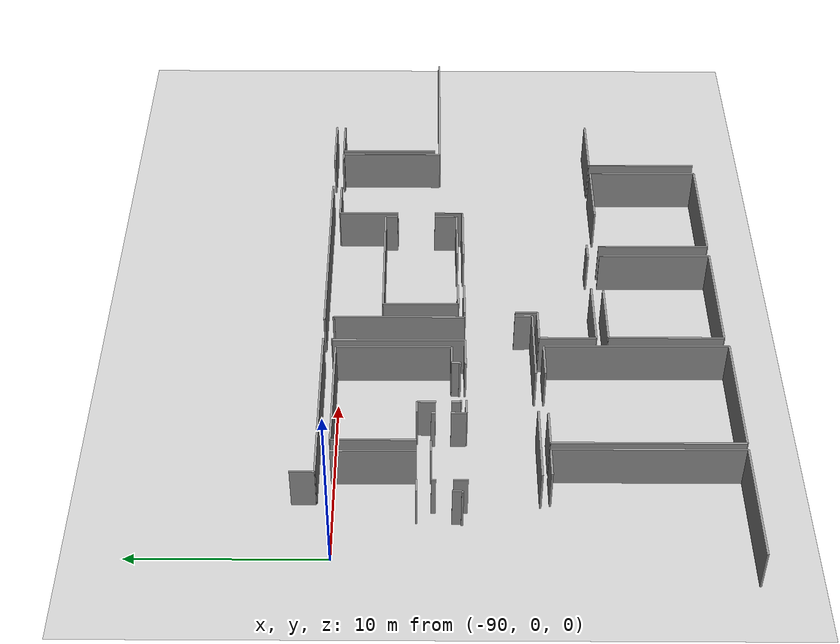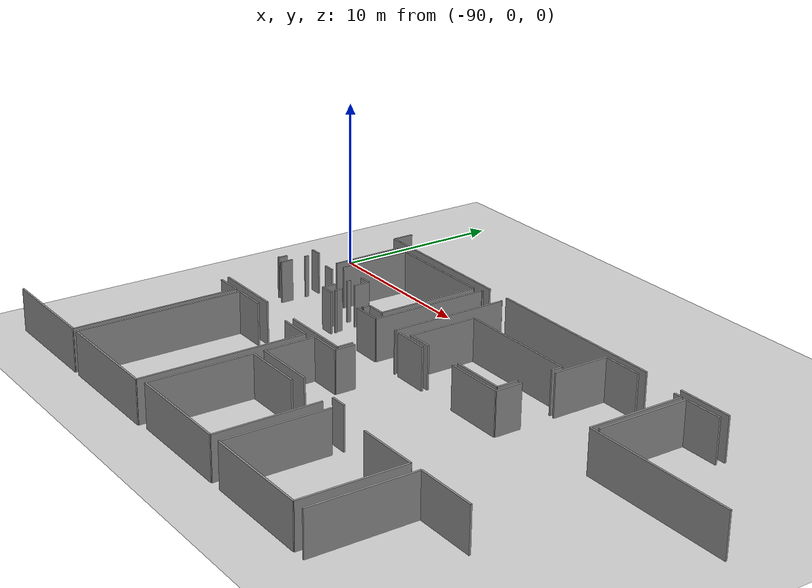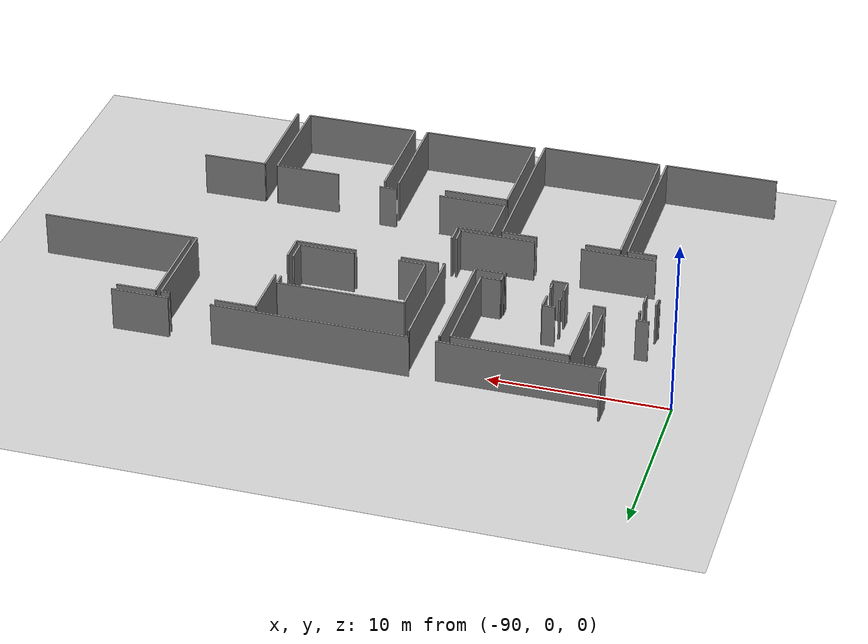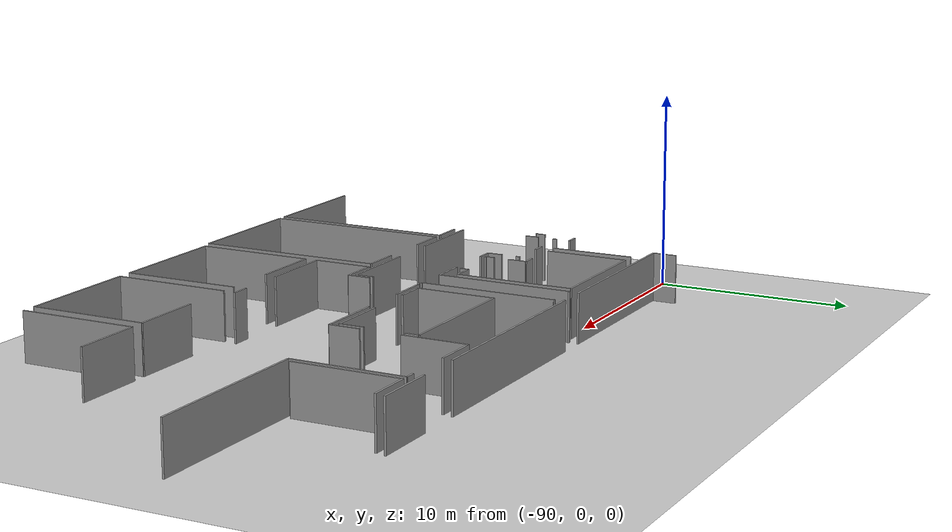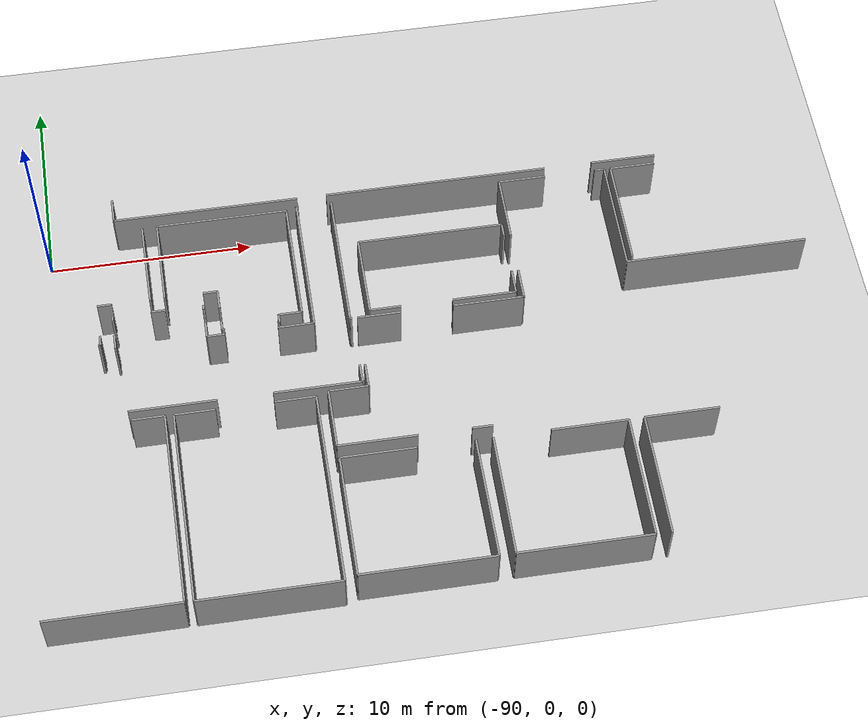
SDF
<sdf version="1.6">
 <world name="default">
  <model name="ground_plane">
   <static>1</static>
   <link name="link">
    <collision name="collision">
     <geometry><plane><normal>0 0 1</normal><size>100 100</size></plane></geometry>
     <surface><friction><ode><mu>100</mu><mu2>50</mu2></ode></friction></surface>
    </collision>
    <visual name="visual">
     <cast_shadows>0</cast_shadows>
     <geometry><plane><normal>0 0 1</normal><size>100 100</size></plane></geometry>
     <material>
      <script><uri>file://media/materials/scripts/gazebo.material</uri><name>Gazebo/Grey</name></script>
     </material>
    </visual>
   </link>
  </model>
  <model name="50037764_PLAN1">
   <static>1</static>
   <link name="Wall_51">
    <collision name="Wall_51_Collision">
     <geometry><box><size>4.26254512177 0.1 2.5</size></box></geometry>
     <pose>2.13127256088 0 1.25 0 0 0</pose>
    </collision>
    <visual name="Wall_51_Visual">
     <pose>2.13127256088 0 1.25 0 0 0</pose>
     <geometry><box><size>4.26254512177 0.1 2.5</size></box></geometry>
     <material>
      <script><uri>file://media/materials/scripts/gazebo.material</uri><name>Gazebo/Grey</name></script>
      <ambient>1 1 1 1</ambient>
     </material>
    </visual>
    <pose>59.4514210178 -31.0718643551 0 0 0 3.14159265359</pose>
   </link>
   <link name="Wall_52">
    <collision name="Wall_52_Collision">
     <geometry><box><size>4.22136356703 0.1 2.5</size></box></geometry>
     <pose>2.11068178352 0 1.25 0 0 0</pose>
    </collision>
    <visual name="Wall_52_Visual">
     <pose>2.11068178352 0 1.25 0 0 0</pose>
     <geometry><box><size>4.22136356703 0.1 2.5</size></box></geometry>
     <material>
      <script><uri>file://media/materials/scripts/gazebo.material</uri><name>Gazebo/Grey</name></script>
      <ambient>1 1 1 1</ambient>
     </material>
    </visual>
    <pose>52.5502059078 -31.0718643551 0 0 0 3.14159265359</pose>
   </link>
   <link name="Wall_60">
    <collision name="Wall_60_Collision">
     <geometry><box><size>0.733387564187 0.1 2.5</size></box></geometry>
     <pose>0.366693782094 0 1.25 0 0 0</pose>
    </collision>
    <visual name="Wall_60_Visual">
     <pose>0.366693782094 0 1.25 0 0 0</pose>
     <geometry><box><size>0.733387564187 0.1 2.5</size></box></geometry>
     <material>
      <script><uri>file://media/materials/scripts/gazebo.material</uri><name>Gazebo/Grey</name></script>
      <ambient>1 1 1 1</ambient>
     </material>
    </visual>
    <pose>48.0306573796 -27.4694951446 0 0 0 1.57079632679</pose>
   </link>
   <link name="Wall_61">
    <collision name="Wall_61_Collision">
     <geometry><box><size>0.232853729219 0.1 2.5</size></box></geometry>
     <pose>0.116426864609 0 1.25 0 0 0</pose>
    </collision>
    <visual name="Wall_61_Visual">
     <pose>0.116426864609 0 1.25 0 0 0</pose>
     <geometry><box><size>0.232853729219 0.1 2.5</size></box></geometry>
     <material>
      <script><uri>file://media/materials/scripts/gazebo.material</uri><name>Gazebo/Grey</name></script>
      <ambient>1 1 1 1</ambient>
     </material>
    </visual>
    <pose>48.0306573796 -25.896969851 0 0 0 1.57079632679</pose>
   </link>
   <link name="Wall_62">
    <collision name="Wall_62_Collision">
     <geometry><box><size>0.6980527734 0.1 2.5</size></box></geometry>
     <pose>0.3490263867 0 1.25 0 0 0</pose>
    </collision>
    <visual name="Wall_62_Visual">
     <pose>0.3490263867 0 1.25 0 0 0</pose>
     <geometry><box><size>0.6980527734 0.1 2.5</size></box></geometry>
     <material>
      <script><uri>file://media/materials/scripts/gazebo.material</uri><name>Gazebo/Grey</name></script>
      <ambient>1 1 1 1</ambient>
     </material>
    </visual>
    <pose>49.8744216788 -25.6641161218 0 0 0 0.0</pose>
   </link>
   <link name="Wall_63">
    <collision name="Wall_63_Collision">
     <geometry><box><size>0.216076058773 0.1 2.5</size></box></geometry>
     <pose>0.108038029386 0 1.25 0 0 0</pose>
    </collision>
    <visual name="Wall_63_Visual">
     <pose>0.108038029386 0 1.25 0 0 0</pose>
     <geometry><box><size>0.216076058773 0.1 2.5</size></box></geometry>
     <material>
      <script><uri>file://media/materials/scripts/gazebo.material</uri><name>Gazebo/Grey</name></script>
      <ambient>1 1 1 1</ambient>
     </material>
    </visual>
    <pose>52.4172555798 -25.6641161218 0 0 0 -1.57079632679</pose>
   </link>
   <link name="Wall_64">
    <collision name="Wall_64_Collision">
     <geometry><box><size>0.78931313234 0.1 2.5</size></box></geometry>
     <pose>0.39465656617 0 1.25 0 0 0</pose>
    </collision>
    <visual name="Wall_64_Visual">
     <pose>0.39465656617 0 1.25 0 0 0</pose>
     <geometry><box><size>0.78931313234 0.1 2.5</size></box></geometry>
     <material>
      <script><uri>file://media/materials/scripts/gazebo.material</uri><name>Gazebo/Grey</name></script>
      <ambient>1 1 1 1</ambient>
     </material>
    </visual>
    <pose>52.4172555798 -26.6697595201 0 0 0 -1.57079632679</pose>
   </link>
   <link name="Wall_65">
    <collision name="Wall_65_Collision">
     <geometry><box><size>0.864304235091 0.1 2.5</size></box></geometry>
     <pose>0.432152117545 0 1.25 0 0 0</pose>
    </collision>
    <visual name="Wall_65_Visual">
     <pose>0.432152117545 0 1.25 0 0 0</pose>
     <geometry><box><size>0.864304235091 0.1 2.5</size></box></geometry>
     <material>
      <script><uri>file://media/materials/scripts/gazebo.material</uri><name>Gazebo/Grey</name></script>
      <ambient>1 1 1 1</ambient>
     </material>
    </visual>
    <pose>52.4172555798 -27.4590726524 0 0 0 0.0</pose>
   </link>
   <link name="Wall_66">
    <collision name="Wall_66_Collision">
     <geometry><box><size>1.74411510499 0.1 2.5</size></box></geometry>
     <pose>0.872057552494 0 1.25 0 0 0</pose>
    </collision>
    <visual name="Wall_66_Visual">
     <pose>0.872057552494 0 1.25 0 0 0</pose>
     <geometry><box><size>1.74411510499 0.1 2.5</size></box></geometry>
     <material>
      <script><uri>file://media/materials/scripts/gazebo.material</uri><name>Gazebo/Grey</name></script>
      <ambient>1 1 1 1</ambient>
     </material>
    </visual>
    <pose>55.8470181504 -27.4590726524 0 0 0 0.0</pose>
   </link>
   <link name="Wall_67">
    <collision name="Wall_67_Collision">
     <geometry><box><size>6.98027352687 0.1 2.5</size></box></geometry>
     <pose>3.49013676343 0 1.25 0 0 0</pose>
    </collision>
    <visual name="Wall_67_Visual">
     <pose>3.49013676343 0 1.25 0 0 0</pose>
     <geometry><box><size>6.98027352687 0.1 2.5</size></box></geometry>
     <material>
      <script><uri>file://media/materials/scripts/gazebo.material</uri><name>Gazebo/Grey</name></script>
      <ambient>1 1 1 1</ambient>
     </material>
    </visual>
    <pose>57.5911332554 -27.4590726524 0 0 0 1.57079632679</pose>
   </link>
   <link name="Wall_68">
    <collision name="Wall_68_Collision">
     <geometry><box><size>0.094819258732 0.1 2.5</size></box></geometry>
     <pose>0.047409629366 0 1.25 0 0 0</pose>
    </collision>
    <visual name="Wall_68_Visual">
     <pose>0.047409629366 0 1.25 0 0 0</pose>
     <geometry><box><size>0.094819258732 0.1 2.5</size></box></geometry>
     <material>
      <script><uri>file://media/materials/scripts/gazebo.material</uri><name>Gazebo/Grey</name></script>
      <ambient>1 1 1 1</ambient>
     </material>
    </visual>
    <pose>57.5911332554 -20.4787991255 0 0 0 0.0</pose>
   </link>
   <link name="Wall_69">
    <collision name="Wall_69_Collision">
     <geometry><box><size>0.0660938532717 0.1 2.5</size></box></geometry>
     <pose>0.0330469266358 0 1.25 0 0 0</pose>
    </collision>
    <visual name="Wall_69_Visual">
     <pose>0.0330469266358 0 1.25 0 0 0</pose>
     <geometry><box><size>0.0660938532717 0.1 2.5</size></box></geometry>
     <material>
      <script><uri>file://media/materials/scripts/gazebo.material</uri><name>Gazebo/Grey</name></script>
      <ambient>1 1 1 1</ambient>
     </material>
    </visual>
    <pose>59.2645787788 -20.4787991255 0 0 0 0.0</pose>
   </link>
   <link name="Wall_70">
    <collision name="Wall_70_Collision">
     <geometry><box><size>6.98129035538 0.1 2.5</size></box></geometry>
     <pose>3.49064517769 0 1.25 0 0 0</pose>
    </collision>
    <visual name="Wall_70_Visual">
     <pose>3.49064517769 0 1.25 0 0 0</pose>
     <geometry><box><size>6.98129035538 0.1 2.5</size></box></geometry>
     <material>
      <script><uri>file://media/materials/scripts/gazebo.material</uri><name>Gazebo/Grey</name></script>
      <ambient>1 1 1 1</ambient>
     </material>
    </visual>
    <pose>59.3306726321 -20.4787991255 0 0 0 -1.57079632679</pose>
   </link>
   <link name="Wall_71">
    <collision name="Wall_71_Collision">
     <geometry><box><size>0.0999034012914 0.1 2.5</size></box></geometry>
     <pose>0.0499517006457 0 1.25 0 0 0</pose>
    </collision>
    <visual name="Wall_71_Visual">
     <pose>0.0499517006457 0 1.25 0 0 0</pose>
     <geometry><box><size>0.0999034012914 0.1 2.5</size></box></geometry>
     <material>
      <script><uri>file://media/materials/scripts/gazebo.material</uri><name>Gazebo/Grey</name></script>
      <ambient>1 1 1 1</ambient>
     </material>
    </visual>
    <pose>59.3306726321 -27.4600894809 0 0 0 0.0</pose>
   </link>
   <link name="Wall_72">
    <collision name="Wall_72_Collision">
     <geometry><box><size>0.939780751468 0.1 2.5</size></box></geometry>
     <pose>0.469890375734 0 1.25 0 0 0</pose>
    </collision>
    <visual name="Wall_72_Visual">
     <pose>0.469890375734 0 1.25 0 0 0</pose>
     <geometry><box><size>0.939780751468 0.1 2.5</size></box></geometry>
     <material>
      <script><uri>file://media/materials/scripts/gazebo.material</uri><name>Gazebo/Grey</name></script>
      <ambient>1 1 1 1</ambient>
     </material>
    </visual>
    <pose>59.4305760334 -30.1323148101 0 0 0 -1.54861381873</pose>
   </link>
   <link name="Wall_73">
    <collision name="Wall_73_Collision">
     <geometry><box><size>0.714576236718 0.1 2.5</size></box></geometry>
     <pose>0.357288118359 0 1.25 0 0 0</pose>
    </collision>
    <visual name="Wall_73_Visual">
     <pose>0.357288118359 0 1.25 0 0 0</pose>
     <geometry><box><size>0.714576236718 0.1 2.5</size></box></geometry>
     <material>
      <script><uri>file://media/materials/scripts/gazebo.material</uri><name>Gazebo/Grey</name></script>
      <ambient>1 1 1 1</ambient>
     </material>
    </visual>
    <pose>48.0545528497 -24.9505567136 0 0 0 3.14159265359</pose>
   </link>
   <link name="Wall_75">
    <collision name="Wall_75_Collision">
     <geometry><box><size>0.506889013168 0.1 2.5</size></box></geometry>
     <pose>0.253444506584 0 1.25 0 0 0</pose>
    </collision>
    <visual name="Wall_75_Visual">
     <pose>0.253444506584 0 1.25 0 0 0</pose>
     <geometry><box><size>0.506889013168 0.1 2.5</size></box></geometry>
     <material>
      <script><uri>file://media/materials/scripts/gazebo.material</uri><name>Gazebo/Grey</name></script>
      <ambient>1 1 1 1</ambient>
     </material>
    </visual>
    <pose>47.3399766129 -26.6781483553 0 0 0 -1.57079632679</pose>
   </link>
   <link name="Wall_76">
    <collision name="Wall_76_Collision">
     <geometry><box><size>0.108038029386 0.1 2.5</size></box></geometry>
     <pose>0.0540190146932 0 1.25 0 0 0</pose>
    </collision>
    <visual name="Wall_76_Visual">
     <pose>0.0540190146932 0 1.25 0 0 0</pose>
     <geometry><box><size>0.108038029386 0.1 2.5</size></box></geometry>
     <material>
      <script><uri>file://media/materials/scripts/gazebo.material</uri><name>Gazebo/Grey</name></script>
      <ambient>1 1 1 1</ambient>
     </material>
    </visual>
    <pose>47.3399766129 -27.1850373684 0 0 0 3.14159265359</pose>
   </link>
   <link name="Wall_82">
    <collision name="Wall_82_Collision">
     <geometry><box><size>4.28075915968 0.1 2.5</size></box></geometry>
     <pose>2.14037957984 0 1.25 0 0 0</pose>
    </collision>
    <visual name="Wall_82_Visual">
     <pose>2.14037957984 0 1.25 0 0 0</pose>
     <geometry><box><size>4.28075915968 0.1 2.5</size></box></geometry>
     <material>
      <script><uri>file://media/materials/scripts/gazebo.material</uri><name>Gazebo/Grey</name></script>
      <ambient>1 1 1 1</ambient>
     </material>
    </visual>
    <pose>49.8744216788 -20.6699628858 0 0 0 -1.56200743261</pose>
   </link>
   <link name="Wall_83">
    <collision name="Wall_83_Collision">
     <geometry><box><size>1.12537495551 0.1 2.5</size></box></geometry>
     <pose>0.562687477757 0 1.25 0 0 0</pose>
    </collision>
    <visual name="Wall_83_Visual">
     <pose>0.562687477757 0 1.25 0 0 0</pose>
     <geometry><box><size>1.12537495551 0.1 2.5</size></box></geometry>
     <material>
      <script><uri>file://media/materials/scripts/gazebo.material</uri><name>Gazebo/Grey</name></script>
      <ambient>1 1 1 1</ambient>
     </material>
    </visual>
    <pose>57.0822105852 -26.7399206874 0 0 0 3.14159265359</pose>
   </link>
   <link name="Wall_84">
    <collision name="Wall_84_Collision">
     <geometry><box><size>0.431897910417 0.1 2.5</size></box></geometry>
     <pose>0.215948955209 0 1.25 0 0 0</pose>
    </collision>
    <visual name="Wall_84_Visual">
     <pose>0.215948955209 0 1.25 0 0 0</pose>
     <geometry><box><size>0.431897910417 0.1 2.5</size></box></geometry>
     <material>
      <script><uri>file://media/materials/scripts/gazebo.material</uri><name>Gazebo/Grey</name></script>
      <ambient>1 1 1 1</ambient>
     </material>
    </visual>
    <pose>55.9568356297 -26.7399206874 0 0 0 -1.57079632679</pose>
   </link>
   <link name="Wall_85">
    <collision name="Wall_85_Collision">
     <geometry><box><size>0.0983781585236 0.1 2.5</size></box></geometry>
     <pose>0.0491890792618 0 1.25 0 0 0</pose>
    </collision>
    <visual name="Wall_85_Visual">
     <pose>0.0491890792618 0 1.25 0 0 0</pose>
     <geometry><box><size>0.0983781585236 0.1 2.5</size></box></geometry>
     <material>
      <script><uri>file://media/materials/scripts/gazebo.material</uri><name>Gazebo/Grey</name></script>
      <ambient>1 1 1 1</ambient>
     </material>
    </visual>
    <pose>55.9568356297 -27.1718185978 0 0 0 3.14159265359</pose>
   </link>
   <link name="Wall_86">
    <collision name="Wall_86_Collision">
     <geometry><box><size>0.125578321216 0.1 2.5</size></box></geometry>
     <pose>0.0627891606081 0 1.25 0 0 0</pose>
    </collision>
    <visual name="Wall_86_Visual">
     <pose>0.0627891606081 0 1.25 0 0 0</pose>
     <geometry><box><size>0.125578321216 0.1 2.5</size></box></geometry>
     <material>
      <script><uri>file://media/materials/scripts/gazebo.material</uri><name>Gazebo/Grey</name></script>
      <ambient>1 1 1 1</ambient>
     </material>
    </visual>
    <pose>53.3067263206 -27.1718185978 0 0 0 3.14159265359</pose>
   </link>
   <link name="Wall_87">
    <collision name="Wall_87_Collision">
     <geometry><box><size>0.45909807311 0.1 2.5</size></box></geometry>
     <pose>0.229549036555 0 1.25 0 0 0</pose>
    </collision>
    <visual name="Wall_87_Visual">
     <pose>0.229549036555 0 1.25 0 0 0</pose>
     <geometry><box><size>0.45909807311 0.1 2.5</size></box></geometry>
     <material>
      <script><uri>file://media/materials/scripts/gazebo.material</uri><name>Gazebo/Grey</name></script>
      <ambient>1 1 1 1</ambient>
     </material>
    </visual>
    <pose>53.1811479994 -27.1718185978 0 0 0 1.57079632679</pose>
   </link>
   <link name="Wall_88">
    <collision name="Wall_88_Collision">
     <geometry><box><size>0.956073008287 0.1 2.5</size></box></geometry>
     <pose>0.478036504144 0 1.25 0 0 0</pose>
    </collision>
    <visual name="Wall_88_Visual">
     <pose>0.478036504144 0 1.25 0 0 0</pose>
     <geometry><box><size>0.956073008287 0.1 2.5</size></box></geometry>
     <material>
      <script><uri>file://media/materials/scripts/gazebo.material</uri><name>Gazebo/Grey</name></script>
      <ambient>1 1 1 1</ambient>
     </material>
    </visual>
    <pose>53.1811479994 -25.9094260003 0 0 0 1.57079632679</pose>
   </link>
   <link name="Wall_89">
    <collision name="Wall_89_Collision">
     <geometry><box><size>0.710254715542 0.1 2.5</size></box></geometry>
     <pose>0.355127357771 0 1.25 0 0 0</pose>
    </collision>
    <visual name="Wall_89_Visual">
     <pose>0.355127357771 0 1.25 0 0 0</pose>
     <geometry><box><size>0.710254715542 0.1 2.5</size></box></geometry>
     <material>
      <script><uri>file://media/materials/scripts/gazebo.material</uri><name>Gazebo/Grey</name></script>
      <ambient>1 1 1 1</ambient>
     </material>
    </visual>
    <pose>53.1811479994 -24.953352992 0 0 0 3.14159265359</pose>
   </link>
   <link name="Wall_90">
    <collision name="Wall_90_Collision">
     <geometry><box><size>4.29177894148 0.1 2.5</size></box></geometry>
     <pose>2.14588947074 0 1.25 0 0 0</pose>
    </collision>
    <visual name="Wall_90_Visual">
     <pose>2.14588947074 0 1.25 0 0 0</pose>
     <geometry><box><size>4.29177894148 0.1 2.5</size></box></geometry>
     <material>
      <script><uri>file://media/materials/scripts/gazebo.material</uri><name>Gazebo/Grey</name></script>
      <ambient>1 1 1 1</ambient>
     </material>
    </visual>
    <pose>50.6131475927 -24.953352992 0 0 0 1.57079632679</pose>
   </link>
   <link name="Wall_91">
    <collision name="Wall_91_Collision">
     <geometry><box><size>6.44948904367 0.1 2.5</size></box></geometry>
     <pose>3.22474452184 0 1.25 0 0 0</pose>
    </collision>
    <visual name="Wall_91_Visual">
     <pose>3.22474452184 0 1.25 0 0 0</pose>
     <geometry><box><size>6.44948904367 0.1 2.5</size></box></geometry>
     <material>
      <script><uri>file://media/materials/scripts/gazebo.material</uri><name>Gazebo/Grey</name></script>
      <ambient>1 1 1 1</ambient>
     </material>
    </visual>
    <pose>50.6131475927 -20.6615740505 0 0 0 0.0</pose>
   </link>
   <link name="Wall_92">
    <collision name="Wall_92_Collision">
     <geometry><box><size>6.07837815351 0.1 2.5</size></box></geometry>
     <pose>3.03918907675 0 1.25 0 0 0</pose>
    </collision>
    <visual name="Wall_92_Visual">
     <pose>3.03918907675 0 1.25 0 0 0</pose>
     <geometry><box><size>6.07837815351 0.1 2.5</size></box></geometry>
     <material>
      <script><uri>file://media/materials/scripts/gazebo.material</uri><name>Gazebo/Grey</name></script>
      <ambient>1 1 1 1</ambient>
     </material>
    </visual>
    <pose>57.0626366363 -20.6615740505 0 0 0 -1.56757606274</pose>
   </link>
   <link name="Wall_93">
    <collision name="Wall_93_Collision">
     <geometry><box><size>6.41237480299 0.1 2.5</size></box></geometry>
     <pose>3.20618740149 0 1.25 0 0 0</pose>
    </collision>
    <visual name="Wall_93_Visual">
     <pose>3.20618740149 0 1.25 0 0 0</pose>
     <geometry><box><size>6.41237480299 0.1 2.5</size></box></geometry>
     <material>
      <script><uri>file://media/materials/scripts/gazebo.material</uri><name>Gazebo/Grey</name></script>
      <ambient>1 1 1 1</ambient>
     </material>
    </visual>
    <pose>50.0157608419 -41.2787889572 0 0 0 3.14159265359</pose>
   </link>
   <link name="Wall_96">
    <collision name="Wall_96_Collision">
     <geometry><box><size>1.60557222025 0.1 2.5</size></box></geometry>
     <pose>0.802786110123 0 1.25 0 0 0</pose>
    </collision>
    <visual name="Wall_96_Visual">
     <pose>0.802786110123 0 1.25 0 0 0</pose>
     <geometry><box><size>1.60557222025 0.1 2.5</size></box></geometry>
     <material>
      <script><uri>file://media/materials/scripts/gazebo.material</uri><name>Gazebo/Grey</name></script>
      <ambient>1 1 1 1</ambient>
     </material>
    </visual>
    <pose>48.4198484926 -31.5561289339 0 0 0 0.0</pose>
   </link>
   <link name="Wall_97">
    <collision name="Wall_97_Collision">
     <geometry><box><size>9.72266482213 0.1 2.5</size></box></geometry>
     <pose>4.86133241106 0 1.25 0 0 0</pose>
    </collision>
    <visual name="Wall_97_Visual">
     <pose>4.86133241106 0 1.25 0 0 0</pose>
     <geometry><box><size>9.72266482213 0.1 2.5</size></box></geometry>
     <material>
      <script><uri>file://media/materials/scripts/gazebo.material</uri><name>Gazebo/Grey</name></script>
      <ambient>1 1 1 1</ambient>
     </material>
    </visual>
    <pose>50.0254207128 -31.5561289339 0 0 0 -1.57178986845</pose>
   </link>
   <link name="Wall_98">
    <collision name="Wall_98_Collision">
     <geometry><box><size>6.78097513854 0.1 2.5</size></box></geometry>
     <pose>3.39048756927 0 1.25 0 0 0</pose>
    </collision>
    <visual name="Wall_98_Visual">
     <pose>3.39048756927 0 1.25 0 0 0</pose>
     <geometry><box><size>6.78097513854 0.1 2.5</size></box></geometry>
     <material>
      <script><uri>file://media/materials/scripts/gazebo.material</uri><name>Gazebo/Grey</name></script>
      <ambient>1 1 1 1</ambient>
     </material>
    </visual>
    <pose>57.2204992628 -41.2818394428 0 0 0 3.14159265359</pose>
   </link>
   <link name="Wall_99">
    <collision name="Wall_99_Collision">
     <geometry><box><size>9.71528801668 0.1 2.5</size></box></geometry>
     <pose>4.85764400834 0 1.25 0 0 0</pose>
    </collision>
    <visual name="Wall_99_Visual">
     <pose>4.85764400834 0 1.25 0 0 0</pose>
     <geometry><box><size>9.71528801668 0.1 2.5</size></box></geometry>
     <material>
      <script><uri>file://media/materials/scripts/gazebo.material</uri><name>Gazebo/Grey</name></script>
      <ambient>1 1 1 1</ambient>
     </material>
    </visual>
    <pose>50.4395241243 -41.2818394428 0 0 0 1.57079632679</pose>
   </link>
   <link name="Wall_100">
    <collision name="Wall_100_Collision">
     <geometry><box><size>1.97823986985 0.1 2.5</size></box></geometry>
     <pose>0.989119934923 0 1.25 0 0 0</pose>
    </collision>
    <visual name="Wall_100_Visual">
     <pose>0.989119934923 0 1.25 0 0 0</pose>
     <geometry><box><size>1.97823986985 0.1 2.5</size></box></geometry>
     <material>
      <script><uri>file://media/materials/scripts/gazebo.material</uri><name>Gazebo/Grey</name></script>
      <ambient>1 1 1 1</ambient>
     </material>
    </visual>
    <pose>50.4395241243 -31.5665514261 0 0 0 0.0</pose>
   </link>
   <link name="Wall_101">
    <collision name="Wall_101_Collision">
     <geometry><box><size>1.98917077635 0.1 2.5</size></box></geometry>
     <pose>0.994585388174 0 1.25 0 0 0</pose>
    </collision>
    <visual name="Wall_101_Visual">
     <pose>0.994585388174 0 1.25 0 0 0</pose>
     <geometry><box><size>1.98917077635 0.1 2.5</size></box></geometry>
     <material>
      <script><uri>file://media/materials/scripts/gazebo.material</uri><name>Gazebo/Grey</name></script>
      <ambient>1 1 1 1</ambient>
     </material>
    </visual>
    <pose>55.1873506533 -31.5665514261 0 0 0 0.0</pose>
   </link>
   <link name="Wall_102">
    <collision name="Wall_102_Collision">
     <geometry><box><size>9.71538755258 0.1 2.5</size></box></geometry>
     <pose>4.85769377629 0 1.25 0 0 0</pose>
    </collision>
    <visual name="Wall_102_Visual">
     <pose>4.85769377629 0 1.25 0 0 0</pose>
     <geometry><box><size>9.71538755258 0.1 2.5</size></box></geometry>
     <material>
      <script><uri>file://media/materials/scripts/gazebo.material</uri><name>Gazebo/Grey</name></script>
      <ambient>1 1 1 1</ambient>
     </material>
    </visual>
    <pose>57.1765214297 -31.5665514261 0 0 0 -1.56626969488</pose>
   </link>
   <link name="Wall_110">
    <collision name="Wall_110_Collision">
     <geometry><box><size>1.24231023438 0.1 2.5</size></box></geometry>
     <pose>0.621155117189 0 1.25 0 0 0</pose>
    </collision>
    <visual name="Wall_110_Visual">
     <pose>0.621155117189 0 1.25 0 0 0</pose>
     <geometry><box><size>1.24231023438 0.1 2.5</size></box></geometry>
     <material>
      <script><uri>file://media/materials/scripts/gazebo.material</uri><name>Gazebo/Grey</name></script>
      <ambient>1 1 1 1</ambient>
     </material>
    </visual>
    <pose>48.5344959073 -18.7540037623 0 0 0 -1.57079632679</pose>
   </link>
   <link name="Wall_111">
    <collision name="Wall_111_Collision">
     <geometry><box><size>9.1519650211 0.1 2.5</size></box></geometry>
     <pose>4.57598251055 0 1.25 0 0 0</pose>
    </collision>
    <visual name="Wall_111_Visual">
     <pose>4.57598251055 0 1.25 0 0 0</pose>
     <geometry><box><size>9.1519650211 0.1 2.5</size></box></geometry>
     <material>
      <script><uri>file://media/materials/scripts/gazebo.material</uri><name>Gazebo/Grey</name></script>
      <ambient>1 1 1 1</ambient>
     </material>
    </visual>
    <pose>48.5344959073 -19.9963139966 0 0 0 0.0</pose>
   </link>
   <link name="Wall_112">
    <collision name="Wall_112_Collision">
     <geometry><box><size>11.0836849865 0.1 2.5</size></box></geometry>
     <pose>5.54184249326 0 1.25 0 0 0</pose>
    </collision>
    <visual name="Wall_112_Visual">
     <pose>5.54184249326 0 1.25 0 0 0</pose>
     <geometry><box><size>11.0836849865 0.1 2.5</size></box></geometry>
     <material>
      <script><uri>file://media/materials/scripts/gazebo.material</uri><name>Gazebo/Grey</name></script>
      <ambient>1 1 1 1</ambient>
     </material>
    </visual>
    <pose>59.1524734354 -19.9963139966 0 0 0 0.0</pose>
   </link>
   <link name="Wall_113">
    <collision name="Wall_113_Collision">
     <geometry><box><size>3.23554832478 0.1 2.5</size></box></geometry>
     <pose>1.61777416239 0 1.25 0 0 0</pose>
    </collision>
    <visual name="Wall_113_Visual">
     <pose>1.61777416239 0 1.25 0 0 0</pose>
     <geometry><box><size>3.23554832478 0.1 2.5</size></box></geometry>
     <material>
      <script><uri>file://media/materials/scripts/gazebo.material</uri><name>Gazebo/Grey</name></script>
      <ambient>1 1 1 1</ambient>
     </material>
    </visual>
    <pose>72.6379073669 -19.9963139966 0 0 0 0.0</pose>
   </link>
   <link name="Wall_117">
    <collision name="Wall_117_Collision">
     <geometry><box><size>0.990390970563 0.1 2.5</size></box></geometry>
     <pose>0.495195485281 0 1.25 0 0 0</pose>
    </collision>
    <visual name="Wall_117_Visual">
     <pose>0.495195485281 0 1.25 0 0 0</pose>
     <geometry><box><size>0.990390970563 0.1 2.5</size></box></geometry>
     <material>
      <script><uri>file://media/materials/scripts/gazebo.material</uri><name>Gazebo/Grey</name></script>
      <ambient>1 1 1 1</ambient>
     </material>
    </visual>
    <pose>65.1344755707 -34.3661345264 0 0 0 3.14159265359</pose>
   </link>
   <link name="Wall_118">
    <collision name="Wall_118_Collision">
     <geometry><box><size>3.82276679038 0.1 2.5</size></box></geometry>
     <pose>1.91138339519 0 1.25 0 0 0</pose>
    </collision>
    <visual name="Wall_118_Visual">
     <pose>1.91138339519 0 1.25 0 0 0</pose>
     <geometry><box><size>3.82276679038 0.1 2.5</size></box></geometry>
     <material>
      <script><uri>file://media/materials/scripts/gazebo.material</uri><name>Gazebo/Grey</name></script>
      <ambient>1 1 1 1</ambient>
     </material>
    </visual>
    <pose>61.5984544207 -34.3661345264 0 0 0 3.14159265359</pose>
   </link>
   <link name="Wall_119">
    <collision name="Wall_119_Collision">
     <geometry><box><size>3.00955818801 0.1 2.5</size></box></geometry>
     <pose>1.50477909401 0 1.25 0 0 0</pose>
    </collision>
    <visual name="Wall_119_Visual">
     <pose>1.50477909401 0 1.25 0 0 0</pose>
     <geometry><box><size>3.00955818801 0.1 2.5</size></box></geometry>
     <material>
      <script><uri>file://media/materials/scripts/gazebo.material</uri><name>Gazebo/Grey</name></script>
      <ambient>1 1 1 1</ambient>
     </material>
    </visual>
    <pose>57.7756876303 -34.3661345264 0 0 0 1.57079632679</pose>
   </link>
   <link name="Wall_120">
    <collision name="Wall_120_Collision">
     <geometry><box><size>1.91290863796 0.1 2.5</size></box></geometry>
     <pose>0.956454318979 0 1.25 0 0 0</pose>
    </collision>
    <visual name="Wall_120_Visual">
     <pose>0.956454318979 0 1.25 0 0 0</pose>
     <geometry><box><size>1.91290863796 0.1 2.5</size></box></geometry>
     <material>
      <script><uri>file://media/materials/scripts/gazebo.material</uri><name>Gazebo/Grey</name></script>
      <ambient>1 1 1 1</ambient>
     </material>
    </visual>
    <pose>57.7756876303 -31.3565763384 0 0 0 0.0</pose>
   </link>
   <link name="Wall_121">
    <collision name="Wall_121_Collision">
     <geometry><box><size>1.19655295134 0.1 2.5</size></box></geometry>
     <pose>0.598276475672 0 1.25 0 0 0</pose>
    </collision>
    <visual name="Wall_121_Visual">
     <pose>0.598276475672 0 1.25 0 0 0</pose>
     <geometry><box><size>1.19655295134 0.1 2.5</size></box></geometry>
     <material>
      <script><uri>file://media/materials/scripts/gazebo.material</uri><name>Gazebo/Grey</name></script>
      <ambient>1 1 1 1</ambient>
     </material>
    </visual>
    <pose>59.6885962682 -31.3565763384 0 0 0 1.57079632679</pose>
   </link>
   <link name="Wall_122">
    <collision name="Wall_122_Collision">
     <geometry><box><size>2.12568000407 0.1 2.5</size></box></geometry>
     <pose>1.06284000203 0 1.25 0 0 0</pose>
    </collision>
    <visual name="Wall_122_Visual">
     <pose>1.06284000203 0 1.25 0 0 0</pose>
     <geometry><box><size>2.12568000407 0.1 2.5</size></box></geometry>
     <material>
      <script><uri>file://media/materials/scripts/gazebo.material</uri><name>Gazebo/Grey</name></script>
      <ambient>1 1 1 1</ambient>
     </material>
    </visual>
    <pose>59.6885962682 -27.4672072805 0 0 0 0.0</pose>
   </link>
   <link name="Wall_123">
    <collision name="Wall_123_Collision">
     <geometry><box><size>3.47374040368 0.1 2.5</size></box></geometry>
     <pose>1.73687020184 0 1.25 0 0 0</pose>
    </collision>
    <visual name="Wall_123_Visual">
     <pose>1.73687020184 0 1.25 0 0 0</pose>
     <geometry><box><size>3.47374040368 0.1 2.5</size></box></geometry>
     <material>
      <script><uri>file://media/materials/scripts/gazebo.material</uri><name>Gazebo/Grey</name></script>
      <ambient>1 1 1 1</ambient>
     </material>
    </visual>
    <pose>64.3639737658 -27.4672072805 0 0 0 0.0</pose>
   </link>
   <link name="Wall_124">
    <collision name="Wall_124_Collision">
     <geometry><box><size>1.5715084651 0.1 2.5</size></box></geometry>
     <pose>0.785754232549 0 1.25 0 0 0</pose>
    </collision>
    <visual name="Wall_124_Visual">
     <pose>0.785754232549 0 1.25 0 0 0</pose>
     <geometry><box><size>1.5715084651 0.1 2.5</size></box></geometry>
     <material>
      <script><uri>file://media/materials/scripts/gazebo.material</uri><name>Gazebo/Grey</name></script>
      <ambient>1 1 1 1</ambient>
     </material>
    </visual>
    <pose>67.8377141695 -27.4672072805 0 0 0 1.57079632679</pose>
   </link>
   <link name="Wall_125">
    <collision name="Wall_125_Collision">
     <geometry><box><size>3.31816564136 0.1 2.5</size></box></geometry>
     <pose>1.65908282068 0 1.25 0 0 0</pose>
    </collision>
    <visual name="Wall_125_Visual">
     <pose>1.65908282068 0 1.25 0 0 0</pose>
     <geometry><box><size>3.31816564136 0.1 2.5</size></box></geometry>
     <material>
      <script><uri>file://media/materials/scripts/gazebo.material</uri><name>Gazebo/Grey</name></script>
      <ambient>1 1 1 1</ambient>
     </material>
    </visual>
    <pose>67.8377141695 -23.8073872591 0 0 0 1.57079632679</pose>
   </link>
   <link name="Wall_126">
    <collision name="Wall_126_Collision">
     <geometry><box><size>2.32014845696 0.1 2.5</size></box></geometry>
     <pose>1.16007422848 0 1.25 0 0 0</pose>
    </collision>
    <visual name="Wall_126_Visual">
     <pose>1.16007422848 0 1.25 0 0 0</pose>
     <geometry><box><size>2.32014845696 0.1 2.5</size></box></geometry>
     <material>
      <script><uri>file://media/materials/scripts/gazebo.material</uri><name>Gazebo/Grey</name></script>
      <ambient>1 1 1 1</ambient>
     </material>
    </visual>
    <pose>67.8377141695 -20.4892216178 0 0 0 0.0</pose>
   </link>
   <link name="Wall_127">
    <collision name="Wall_127_Collision">
     <geometry><box><size>0.506889013168 0.1 2.5</size></box></geometry>
     <pose>0.253444506584 0 1.25 0 0 0</pose>
    </collision>
    <visual name="Wall_127_Visual">
     <pose>0.253444506584 0 1.25 0 0 0</pose>
     <geometry><box><size>0.506889013168 0.1 2.5</size></box></geometry>
     <material>
      <script><uri>file://media/materials/scripts/gazebo.material</uri><name>Gazebo/Grey</name></script>
      <ambient>1 1 1 1</ambient>
     </material>
    </visual>
    <pose>72.7022217703 -20.4892216178 0 0 0 0.0</pose>
   </link>
   <link name="Wall_128">
    <collision name="Wall_128_Collision">
     <geometry><box><size>5.70313691596 0.1 2.5</size></box></geometry>
     <pose>2.85156845798 0 1.25 0 0 0</pose>
    </collision>
    <visual name="Wall_128_Visual">
     <pose>2.85156845798 0 1.25 0 0 0</pose>
     <geometry><box><size>5.70313691596 0.1 2.5</size></box></geometry>
     <material>
      <script><uri>file://media/materials/scripts/gazebo.material</uri><name>Gazebo/Grey</name></script>
      <ambient>1 1 1 1</ambient>
     </material>
    </visual>
    <pose>73.2091107835 -20.4892216178 0 0 0 -1.57079632679</pose>
   </link>
   <link name="Wall_129">
    <collision name="Wall_129_Collision">
     <geometry><box><size>8.95953022523 0.1 2.5</size></box></geometry>
     <pose>4.47976511261 0 1.25 0 0 0</pose>
    </collision>
    <visual name="Wall_129_Visual">
     <pose>4.47976511261 0 1.25 0 0 0</pose>
     <geometry><box><size>8.95953022523 0.1 2.5</size></box></geometry>
     <material>
      <script><uri>file://media/materials/scripts/gazebo.material</uri><name>Gazebo/Grey</name></script>
      <ambient>1 1 1 1</ambient>
     </material>
    </visual>
    <pose>73.2091107835 -26.1923585337 0 0 0 0.0</pose>
   </link>
   <link name="Wall_132">
    <collision name="Wall_132_Collision">
     <geometry><box><size>3.12039249581 0.1 2.5</size></box></geometry>
     <pose>1.5601962479 0 1.25 0 0 0</pose>
    </collision>
    <visual name="Wall_132_Visual">
     <pose>1.5601962479 0 1.25 0 0 0</pose>
     <geometry><box><size>3.12039249581 0.1 2.5</size></box></geometry>
     <material>
      <script><uri>file://media/materials/scripts/gazebo.material</uri><name>Gazebo/Grey</name></script>
      <ambient>1 1 1 1</ambient>
     </material>
    </visual>
    <pose>67.5179216025 -27.1357211856 0 0 0 3.14159265359</pose>
   </link>
   <link name="Wall_133">
    <collision name="Wall_133_Collision">
     <geometry><box><size>1.52346331791 0.1 2.5</size></box></geometry>
     <pose>0.761731658956 0 1.25 0 0 0</pose>
    </collision>
    <visual name="Wall_133_Visual">
     <pose>0.761731658956 0 1.25 0 0 0</pose>
     <geometry><box><size>1.52346331791 0.1 2.5</size></box></geometry>
     <material>
      <script><uri>file://media/materials/scripts/gazebo.material</uri><name>Gazebo/Grey</name></script>
      <ambient>1 1 1 1</ambient>
     </material>
    </visual>
    <pose>61.8628298337 -27.1357211856 0 0 0 3.14159265359</pose>
   </link>
   <link name="Wall_134">
    <collision name="Wall_134_Collision">
     <geometry><box><size>4.04418119884 0.1 2.5</size></box></geometry>
     <pose>2.02209059942 0 1.25 0 0 0</pose>
    </collision>
    <visual name="Wall_134_Visual">
     <pose>2.02209059942 0 1.25 0 0 0</pose>
     <geometry><box><size>4.04418119884 0.1 2.5</size></box></geometry>
     <material>
      <script><uri>file://media/materials/scripts/gazebo.material</uri><name>Gazebo/Grey</name></script>
      <ambient>1 1 1 1</ambient>
     </material>
    </visual>
    <pose>60.3393665158 -27.1357211856 0 0 0 1.57079632679</pose>
   </link>
   <link name="Wall_135">
    <collision name="Wall_135_Collision">
     <geometry><box><size>7.17448777264 0.1 2.5</size></box></geometry>
     <pose>3.58724388632 0 1.25 0 0 0</pose>
    </collision>
    <visual name="Wall_135_Visual">
     <pose>3.58724388632 0 1.25 0 0 0</pose>
     <geometry><box><size>7.17448777264 0.1 2.5</size></box></geometry>
     <material>
      <script><uri>file://media/materials/scripts/gazebo.material</uri><name>Gazebo/Grey</name></script>
      <ambient>1 1 1 1</ambient>
     </material>
    </visual>
    <pose>60.3393665158 -23.0915399868 0 0 0 0.0</pose>
   </link>
   <link name="Wall_136">
    <collision name="Wall_136_Collision">
     <geometry><box><size>0.679749860186 0.1 2.5</size></box></geometry>
     <pose>0.339874930093 0 1.25 0 0 0</pose>
    </collision>
    <visual name="Wall_136_Visual">
     <pose>0.339874930093 0 1.25 0 0 0</pose>
     <geometry><box><size>0.679749860186 0.1 2.5</size></box></geometry>
     <material>
      <script><uri>file://media/materials/scripts/gazebo.material</uri><name>Gazebo/Grey</name></script>
      <ambient>1 1 1 1</ambient>
     </material>
    </visual>
    <pose>67.5138542885 -23.0915399868 0 0 0 -1.57079632679</pose>
   </link>
   <link name="Wall_137">
    <collision name="Wall_137_Collision">
     <geometry><box><size>1.2524851236 0.1 2.5</size></box></geometry>
     <pose>0.626242561801 0 1.25 0 0 0</pose>
    </collision>
    <visual name="Wall_137_Visual">
     <pose>0.626242561801 0 1.25 0 0 0</pose>
     <geometry><box><size>1.2524851236 0.1 2.5</size></box></geometry>
     <material>
      <script><uri>file://media/materials/scripts/gazebo.material</uri><name>Gazebo/Grey</name></script>
      <ambient>1 1 1 1</ambient>
     </material>
    </visual>
    <pose>67.5138542885 -25.8832426661 0 0 0 -1.56754892599</pose>
   </link>
   <link name="Wall_138">
    <collision name="Wall_138_Collision">
     <geometry><box><size>6.44847221516 0.1 2.5</size></box></geometry>
     <pose>3.22423610758 0 1.25 0 0 0</pose>
    </collision>
    <visual name="Wall_138_Visual">
     <pose>3.22423610758 0 1.25 0 0 0</pose>
     <geometry><box><size>6.44847221516 0.1 2.5</size></box></geometry>
     <material>
      <script><uri>file://media/materials/scripts/gazebo.material</uri><name>Gazebo/Grey</name></script>
      <ambient>1 1 1 1</ambient>
     </material>
    </visual>
    <pose>64.2622909146 -41.0886420255 0 0 0 3.14159265359</pose>
   </link>
   <link name="Wall_139">
    <collision name="Wall_139_Collision">
     <geometry><box><size>6.08215974376 0.1 2.5</size></box></geometry>
     <pose>3.04107987188 0 1.25 0 0 0</pose>
    </collision>
    <visual name="Wall_139_Visual">
     <pose>3.04107987188 0 1.25 0 0 0</pose>
     <geometry><box><size>6.08215974376 0.1 2.5</size></box></geometry>
     <material>
      <script><uri>file://media/materials/scripts/gazebo.material</uri><name>Gazebo/Grey</name></script>
      <ambient>1 1 1 1</ambient>
     </material>
    </visual>
    <pose>57.8138186995 -41.0886420255 0 0 0 1.57079632679</pose>
   </link>
   <link name="Wall_140">
    <collision name="Wall_140_Collision">
     <geometry><box><size>3.63770400122 0.1 2.5</size></box></geometry>
     <pose>1.81885200061 0 1.25 0 0 0</pose>
    </collision>
    <visual name="Wall_140_Visual">
     <pose>1.81885200061 0 1.25 0 0 0</pose>
     <geometry><box><size>3.63770400122 0.1 2.5</size></box></geometry>
     <material>
      <script><uri>file://media/materials/scripts/gazebo.material</uri><name>Gazebo/Grey</name></script>
      <ambient>1 1 1 1</ambient>
     </material>
    </visual>
    <pose>57.8138186995 -35.0064822818 0 0 0 0.0</pose>
   </link>
   <link name="Wall_141">
    <collision name="Wall_141_Collision">
     <geometry><box><size>6.08238299166 0.1 2.5</size></box></geometry>
     <pose>3.04119149583 0 1.25 0 0 0</pose>
    </collision>
    <visual name="Wall_141_Visual">
     <pose>3.04119149583 0 1.25 0 0 0</pose>
     <geometry><box><size>6.08238299166 0.1 2.5</size></box></geometry>
     <material>
      <script><uri>file://media/materials/scripts/gazebo.material</uri><name>Gazebo/Grey</name></script>
      <ambient>1 1 1 1</ambient>
     </material>
    </visual>
    <pose>64.2101784534 -35.0064822818 0 0 0 -1.56222845152</pose>
   </link>
   <link name="Wall_142">
    <collision name="Wall_142_Collision">
     <geometry><box><size>6.43296558035 0.1 2.5</size></box></geometry>
     <pose>3.21648279018 0 1.25 0 0 0</pose>
    </collision>
    <visual name="Wall_142_Visual">
     <pose>3.21648279018 0 1.25 0 0 0</pose>
     <geometry><box><size>6.43296558035 0.1 2.5</size></box></geometry>
     <material>
      <script><uri>file://media/materials/scripts/gazebo.material</uri><name>Gazebo/Grey</name></script>
      <ambient>1 1 1 1</ambient>
     </material>
    </visual>
    <pose>71.4624536072 -41.0772027048 0 0 0 3.14159265359</pose>
   </link>
   <link name="Wall_143">
    <collision name="Wall_143_Collision">
     <geometry><box><size>6.070720423 0.1 2.5</size></box></geometry>
     <pose>3.0353602115 0 1.25 0 0 0</pose>
    </collision>
    <visual name="Wall_143_Visual">
     <pose>3.0353602115 0 1.25 0 0 0</pose>
     <geometry><box><size>6.070720423 0.1 2.5</size></box></geometry>
     <material>
      <script><uri>file://media/materials/scripts/gazebo.material</uri><name>Gazebo/Grey</name></script>
      <ambient>1 1 1 1</ambient>
     </material>
    </visual>
    <pose>65.0294880268 -41.0772027048 0 0 0 1.57079632679</pose>
   </link>
   <link name="Wall_144">
    <collision name="Wall_144_Collision">
     <geometry><box><size>3.69185011948 0.1 2.5</size></box></geometry>
     <pose>1.84592505974 0 1.25 0 0 0</pose>
    </collision>
    <visual name="Wall_144_Visual">
     <pose>1.84592505974 0 1.25 0 0 0</pose>
     <geometry><box><size>3.69185011948 0.1 2.5</size></box></geometry>
     <material>
      <script><uri>file://media/materials/scripts/gazebo.material</uri><name>Gazebo/Grey</name></script>
      <ambient>1 1 1 1</ambient>
     </material>
    </visual>
    <pose>67.7795007372 -35.0064822818 0 0 0 0.0</pose>
   </link>
   <link name="Wall_145">
    <collision name="Wall_145_Collision">
     <geometry><box><size>6.0707269429 0.1 2.5</size></box></geometry>
     <pose>3.03536347145 0 1.25 0 0 0</pose>
    </collision>
    <visual name="Wall_145_Visual">
     <pose>3.03536347145 0 1.25 0 0 0</pose>
     <geometry><box><size>6.0707269429 0.1 2.5</size></box></geometry>
     <material>
      <script><uri>file://media/materials/scripts/gazebo.material</uri><name>Gazebo/Grey</name></script>
      <ambient>1 1 1 1</ambient>
     </material>
    </visual>
    <pose>71.4713508567 -35.0064822818 0 0 0 -1.57226192601</pose>
   </link>
   <link name="Wall_147">
    <collision name="Wall_147_Collision">
     <geometry><box><size>6.1088514922 0.1 2.5</size></box></geometry>
     <pose>3.0544257461 0 1.25 0 0 0</pose>
    </collision>
    <visual name="Wall_147_Visual">
     <pose>3.0544257461 0 1.25 0 0 0</pose>
     <geometry><box><size>6.1088514922 0.1 2.5</size></box></geometry>
     <material>
      <script><uri>file://media/materials/scripts/gazebo.material</uri><name>Gazebo/Grey</name></script>
      <ambient>1 1 1 1</ambient>
     </material>
    </visual>
    <pose>72.2207534699 -41.0899130612 0 0 0 1.57079632679</pose>
   </link>
   <link name="Wall_148">
    <collision name="Wall_148_Collision">
     <geometry><box><size>3.60745335299 0.1 2.5</size></box></geometry>
     <pose>1.8037266765 0 1.25 0 0 0</pose>
    </collision>
    <visual name="Wall_148_Visual">
     <pose>1.8037266765 0 1.25 0 0 0</pose>
     <geometry><box><size>3.60745335299 0.1 2.5</size></box></geometry>
     <material>
      <script><uri>file://media/materials/scripts/gazebo.material</uri><name>Gazebo/Grey</name></script>
      <ambient>1 1 1 1</ambient>
     </material>
    </visual>
    <pose>72.2207534699 -34.981061569 0 0 0 0.0</pose>
   </link>
   <link name="Wall_160">
    <collision name="Wall_160_Collision">
     <geometry><box><size>5.41766231125 0.1 2.5</size></box></geometry>
     <pose>2.70883115563 0 1.25 0 0 0</pose>
    </collision>
    <visual name="Wall_160_Visual">
     <pose>2.70883115563 0 1.25 0 0 0</pose>
     <geometry><box><size>5.41766231125 0.1 2.5</size></box></geometry>
     <material>
      <script><uri>file://media/materials/scripts/gazebo.material</uri><name>Gazebo/Grey</name></script>
      <ambient>1 1 1 1</ambient>
     </material>
    </visual>
    <pose>73.5225481723 -25.9109512431 0 0 0 1.57079632679</pose>
   </link>
   <link name="Wall_161">
    <collision name="Wall_161_Collision">
     <geometry><box><size>2.23854796889 0.1 2.5</size></box></geometry>
     <pose>1.11927398444 0 1.25 0 0 0</pose>
    </collision>
    <visual name="Wall_161_Visual">
     <pose>1.11927398444 0 1.25 0 0 0</pose>
     <geometry><box><size>2.23854796889 0.1 2.5</size></box></geometry>
     <material>
      <script><uri>file://media/materials/scripts/gazebo.material</uri><name>Gazebo/Grey</name></script>
      <ambient>1 1 1 1</ambient>
     </material>
    </visual>
    <pose>73.5225481723 -20.4932889318 0 0 0 0.0</pose>
   </link>
   <pose>-135.1 20.8410341146 0 0 0 0</pose>
  </model>
 </world>
</sdf>
